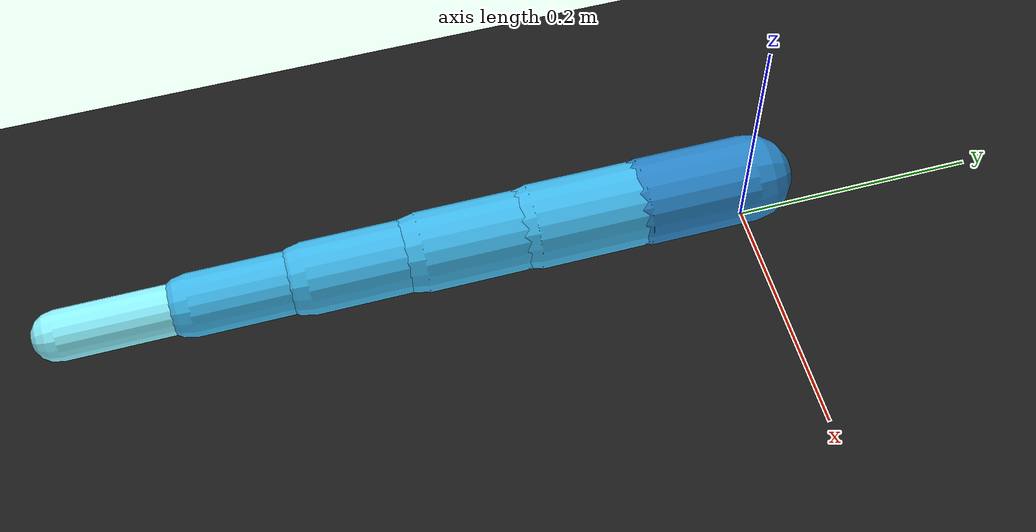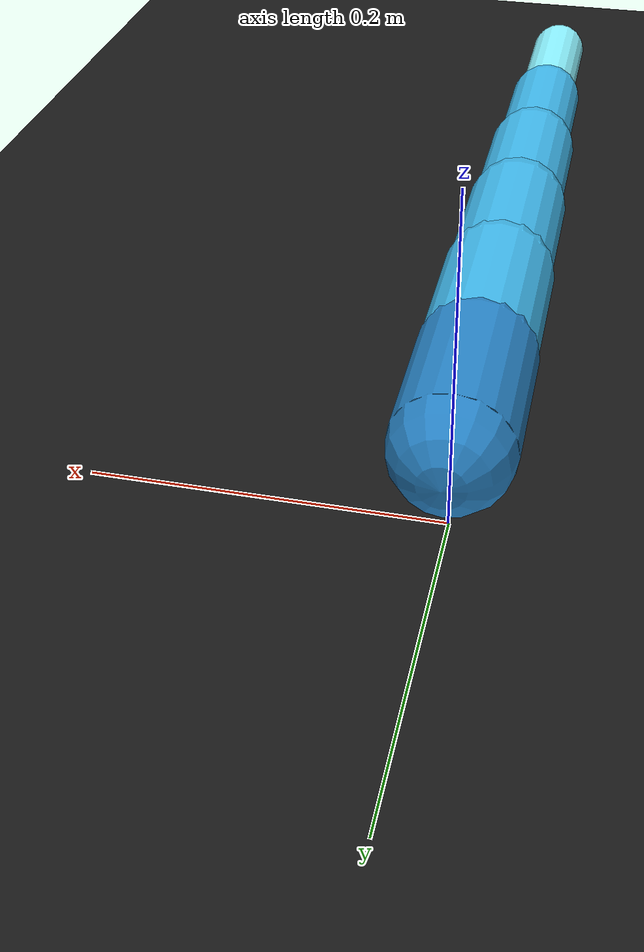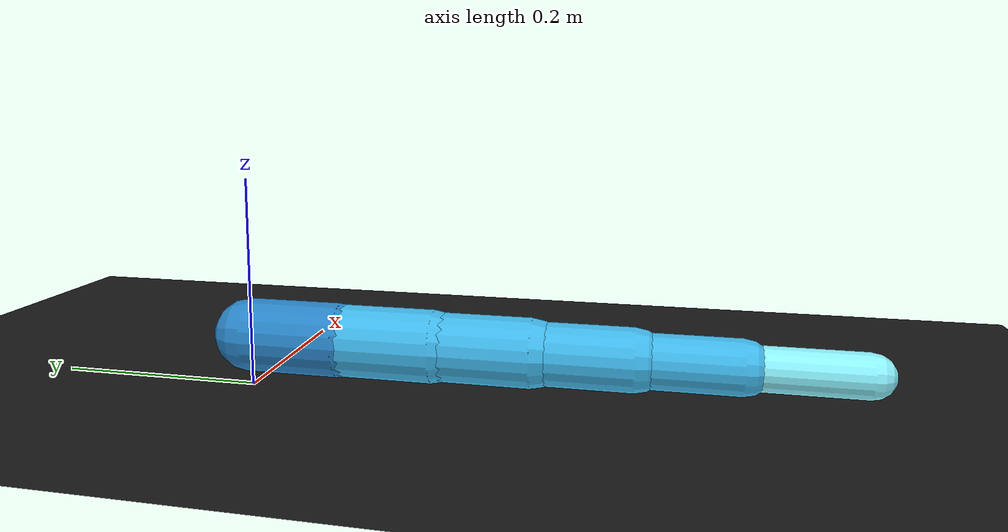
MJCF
<mujoco model="Eel2D_Swimmer">

    <compiler angle="degree" inertiafromgeom="true"/>
    <option timestep="0.01" gravity="0 0 0" integrator="RK4"/>

    <default>
        <joint damping="0.04" stiffness="0" armature="0.01"/>
        <motor ctrlrange="-1 1" ctrllimited="true"/>
        <geom solref="0.001 1" solimp="0.9 0.95 0.001"/>
    </default>

    <asset>
        <material name="eel_head" rgba="0.16 0.52 0.78 1"/>
        <material name="eel_body" rgba="0.25 0.72 0.92 1"/>
        <material name="eel_tail" rgba="0.55 0.95 1.00 1"/>
    </asset>

    <worldbody>
        <geom type="plane" size="5 5 0.1" rgba="0.1 0.1 0.1 1" pos="0 0 0"/>

        <body name="seg1" pos="0 0 0.05">
            <joint name="free_xy" type="free"/>
            <geom name="seg1_geom" type="capsule" fromto="0 0 0  0 -0.09 0" size="0.035" material="eel_head" density="450"/>

            <body name="seg2" pos="0 -0.09 0">
                <joint name="joint1" type="hinge" axis="0 0 1" range="-50 50"/>
                <geom name="seg2_geom" type="capsule" fromto="0 0 0  0 -0.09 0" size="0.034" material="eel_body" density="450"/>

                <body name="seg3" pos="0 -0.09 0">
                    <joint name="joint2" type="hinge" axis="0 0 1" range="-55 55"/>
                    <geom name="seg3_geom" type="capsule" fromto="0 0 0  0 -0.09 0" size="0.032" material="eel_body" density="450"/>

                    <body name="seg4" pos="0 -0.09 0">
                        <joint name="joint3" type="hinge" axis="0 0 1" range="-60 60"/>
                        <geom name="seg4_geom" type="capsule" fromto="0 0 0  0 -0.09 0" size="0.029" material="eel_body" density="450"/>

                        <body name="seg5" pos="0 -0.09 0">
                            <joint name="joint4" type="hinge" axis="0 0 1" range="-65 65"/>
                            <geom name="seg5_geom" type="capsule" fromto="0 0 0  0 -0.09 0" size="0.025" material="eel_body" density="450"/>

                            <body name="seg6" pos="0 -0.09 0">
                                <joint name="joint5" type="hinge" axis="0 0 1" range="-70 70"/>
                                <geom name="seg6_geom" type="capsule" fromto="0 0 0  0 -0.10 0" size="0.020" material="eel_tail" density="450"/>
                            </body>
                        </body>
                    </body>
                </body>
            </body>
        </body>

        <light directional="true" diffuse="0.9 0.9 0.9" pos="0 0 5" dir="0 0 -1"/>
    </worldbody>

    <actuator>
        <motor joint="joint1" gear="0.12"/>
        <motor joint="joint2" gear="0.14"/>
        <motor joint="joint3" gear="0.16"/>
        <motor joint="joint4" gear="0.18"/>
        <motor joint="joint5" gear="0.20"/>
    </actuator>

</mujoco>
